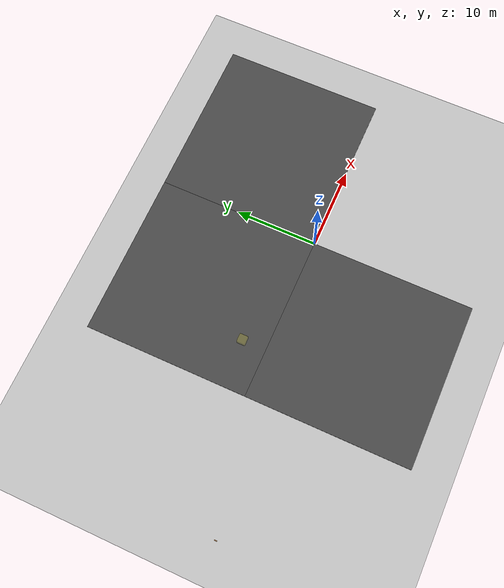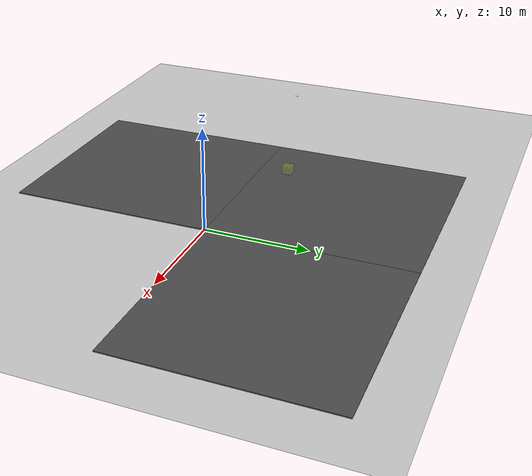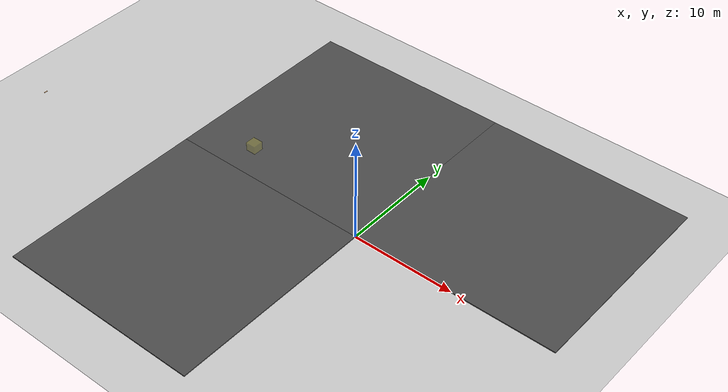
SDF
<sdf version="1.7">
 <world name="default">
  <model name="ground_plane">
   <static>1</static>
   <link name="link">
    <collision name="collision">
     <geometry><plane><normal>0 0 1</normal><size>100 100</size></plane></geometry>
     <surface><friction><ode><mu>100</mu><mu2>50</mu2></ode></friction></surface>
    </collision>
    <visual name="visual">
     <cast_shadows>0</cast_shadows>
     <geometry><plane><normal>0 0 1</normal><size>100 100</size></plane></geometry>
     <material>
      <script><uri>file://media/materials/scripts/gazebo.material</uri><name>Gazebo/Grey</name></script>
     </material>
    </visual>
   </link>
  </model>
  <model name="asphalt_plane">
   <static>1</static>
   <link name="link">
    <collision name="collision"><geometry><box><size>20 20 0.1</size></box></geometry></collision>
    <visual name="visual">
     <cast_shadows>0</cast_shadows>
     <geometry><box><size>20 20 0.1</size></box></geometry>
     <material>
      <script>
       <uri>model://asphalt_plane/materials/scripts</uri>
       <uri>model://asphalt_plane/materials/textures</uri>
       <name>vrc/asphalt</name>
      </script>
     </material>
    </visual>
   </link>
   <pose>10 10 0 0 -0 0</pose>
  </model>
  <model name="asphalt_plane_clone">
   <static>1</static>
   <link name="link">
    <collision name="collision"><geometry><box><size>20 20 0.1</size></box></geometry></collision>
    <visual name="visual">
     <cast_shadows>0</cast_shadows>
     <geometry><box><size>20 20 0.1</size></box></geometry>
     <material>
      <script>
       <uri>model://asphalt_plane/materials/scripts</uri>
       <uri>model://asphalt_plane/materials/textures</uri>
       <name>vrc/asphalt</name>
      </script>
     </material>
    </visual>
   </link>
   <pose>-10 10 0 0 -0 0</pose>
  </model>
  <model name="wooden_board">
   <link name="base">
    <pose>0 0 0.00523 0 -0 0</pose>
    <inertial>
     <mass>0.2765</mass>
     <inertia>
      <ixx>0.0025148</ixx>
      <ixy>0</ixy>
      <ixz>0</ixz>
      <iyy>0.00024037</iyy>
      <iyz>0</iyz>
      <izz>0.00275013</izz>
     </inertia>
    </inertial>
    <collision name="collision">
     <geometry><box><size>0.1016 0.3302 0.01046</size></box></geometry>
     <surface>
      <contact>
       <poissons_ratio>0.347</poissons_ratio>
       <elastic_modulus>8.8e+09</elastic_modulus>
       <ode><kp>100000</kp><kd>100</kd><max_vel>100</max_vel><min_depth>0.001</min_depth></ode>
      </contact>
      <friction>
       <torsional>
        <coefficient>1</coefficient>
        <use_patch_radius>0</use_patch_radius>
        <surface_radius>0.01</surface_radius>
       </torsional>
      </friction>
     </surface>
    </collision>
    <visual name="visual">
     <geometry><box><size>0.1016 0.3302 0.01046</size></box></geometry>
     <material>
      <script><uri>file://media/materials/scripts/gazebo.material</uri><name>Gazebo/Wood</name></script>
     </material>
    </visual>
    <visual name="tee_nut_1">
     <pose>0 -0.116 0 0 -0 0</pose>
     <geometry><cylinder><radius>0.00635</radius><length>0.0105646</length></cylinder></geometry>
     <material>
      <script><uri>file://media/materials/scripts/gazebo.material</uri><name>Gazebo/Grey</name></script>
     </material>
    </visual>
    <visual name="tee_nut_2">
     <pose>0 -0.038 0 0 -0 0</pose>
     <geometry><cylinder><radius>0.00635</radius><length>0.0105646</length></cylinder></geometry>
     <material>
      <script><uri>file://media/materials/scripts/gazebo.material</uri><name>Gazebo/Grey</name></script>
     </material>
    </visual>
    <visual name="tee_nut_3">
     <pose>0 0.038 0 0 -0 0</pose>
     <geometry><cylinder><radius>0.00635</radius><length>0.0105646</length></cylinder></geometry>
     <material>
      <script><uri>file://media/materials/scripts/gazebo.material</uri><name>Gazebo/Grey</name></script>
     </material>
    </visual>
    <visual name="tee_nut_4">
     <pose>0 0.116 0 0 -0 0</pose>
     <geometry><cylinder><radius>0.00635</radius><length>0.0105646</length></cylinder></geometry>
     <material>
      <script><uri>file://media/materials/scripts/gazebo.material</uri><name>Gazebo/Grey</name></script>
     </material>
    </visual>
   </link>
   <pose>-35.1744 -3.576 -0.001007 0 -0 0</pose>
  </model>
  <model name="asphalt_plane_clone_clone">
   <static>1</static>
   <link name="link">
    <collision name="collision"><geometry><box><size>20 20 0.1</size></box></geometry></collision>
    <visual name="visual">
     <cast_shadows>0</cast_shadows>
     <geometry><box><size>20 20 0.1</size></box></geometry>
     <material>
      <script>
       <uri>model://asphalt_plane/materials/scripts</uri>
       <uri>model://asphalt_plane/materials/textures</uri>
       <name>vrc/asphalt</name>
      </script>
     </material>
    </visual>
   </link>
   <pose>-10 -10 0 0 -0 0</pose>
  </model>
  <model name="RegionEventBox_clone">
   <static>1</static>
   <pose>-14.2499 2.89996 0 0 -0 0</pose>
   <link name="link">
    <visual name="visual">
     <transparency>0.75</transparency>
     <geometry><box><size>1 1 1.75</size></box></geometry>
     <material>
      <script><uri>file://media/materials/scripts/gazebo.material</uri><name>Gazebo/Yellow</name></script>
     </material>
    </visual>
   </link>
   <plugin name="region_event_box" filename="libRegionEventBoxPlugin.so">
    <event><name>model_in_region_event_box</name><type>inclusion</type><active>1</active></event>
   </plugin>
  </model>
 </world>
</sdf>
